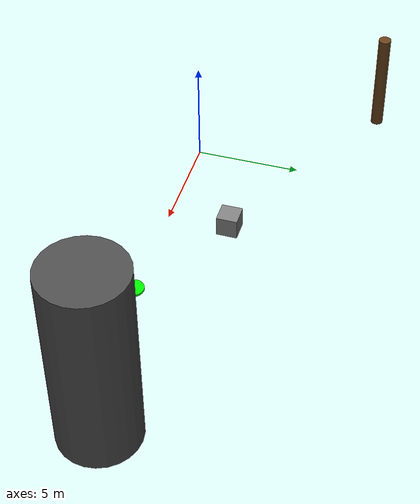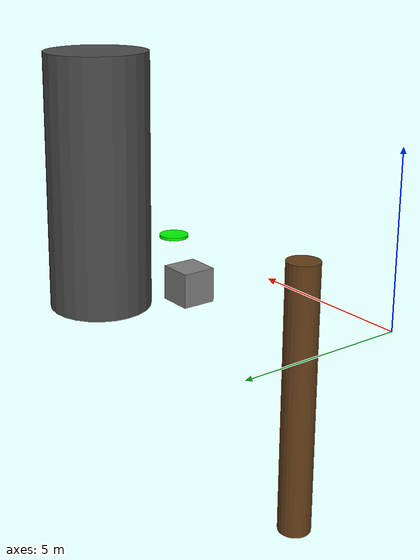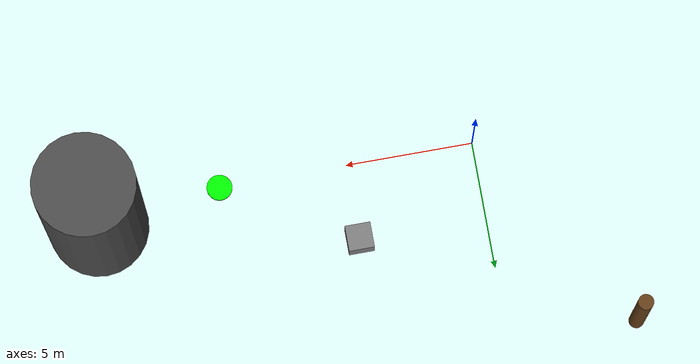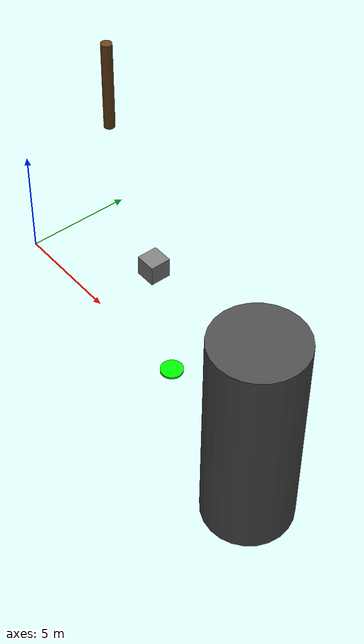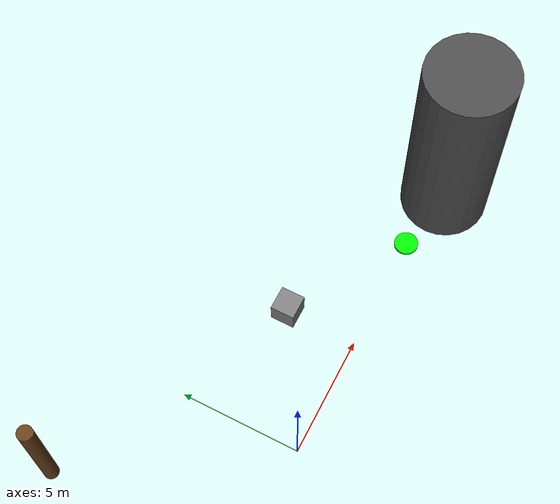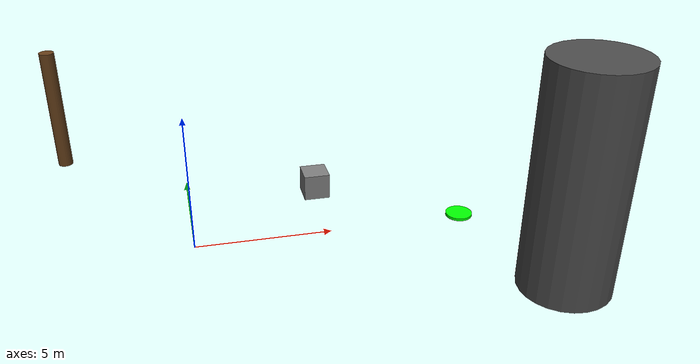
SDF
<sdf version="1.6">
 <world name="ugv_world">
  <physics name="default_physics" default="true" type="ode">
   <real_time_update_rate>1000</real_time_update_rate>
   <max_step_size>0.001</max_step_size>
   <real_time_factor>1.0</real_time_factor>
   <ode>
    <solver><type>quick</type><iters>50</iters></solver>
    <constraints>
     <cfm>0.0</cfm>
     <erp>0.2</erp>
     <contact_max_correcting_vel>100.0</contact_max_correcting_vel>
     <contact_surface_layer>0.001</contact_surface_layer>
    </constraints>
   </ode>
  </physics>
  <scene><ambient>0.4 0.4 0.4 1</ambient><background>0.7 0.7 0.7 1</background><shadows>true</shadows></scene>
  <model name="rock_1">
   <static>true</static>
   <pose>5 3 0.5 0 0 0</pose>
   <link name="link">
    <collision name="collision"><geometry><box><size>1 1 1</size></box></geometry></collision>
    <visual name="visual">
     <geometry><box><size>1 1 1</size></box></geometry>
     <material><ambient>0.5 0.5 0.5 1</ambient><diffuse>0.5 0.5 0.5 1</diffuse></material>
    </visual>
   </link>
  </model>
  <model name="tunnel_1">
   <static>true</static>
   <pose>15 0 1 0 0 1.57</pose>
   <link name="link">
    <collision name="collision">
     <geometry><cylinder><radius>2</radius><length>10</length></cylinder></geometry>
    </collision>
    <visual name="visual">
     <geometry><cylinder><radius>2</radius><length>10</length></cylinder></geometry>
     <material><ambient>0.3 0.3 0.3 1</ambient><diffuse>0.3 0.3 0.3 1</diffuse></material>
    </visual>
   </link>
  </model>
  <model name="tree_1">
   <static>true</static>
   <pose>-5 8 2.5 0 0 0</pose>
   <link name="trunk">
    <visual name="visual">
     <geometry><cylinder><radius>0.3</radius><length>5</length></cylinder></geometry>
     <material><ambient>0.4 0.25 0.1 1</ambient></material>
    </visual>
   </link>
  </model>
  <model name="waypoint_1">
   <static>true</static>
   <pose>10 0 0.1 0 0 0</pose>
   <link name="link">
    <visual name="visual">
     <geometry><cylinder><radius>0.5</radius><length>0.1</length></cylinder></geometry>
     <material><ambient>0 1 0 1</ambient><diffuse>0 1 0 1</diffuse></material>
    </visual>
   </link>
  </model>
  <plugin name="dirt_plugin" filename="libgazebo_ros_dirt.so">
   <topic>/world/ugv_world/terrain</topic>
   <terrain_difficulty>0.3</terrain_difficulty>
  </plugin>
 </world>
</sdf>
